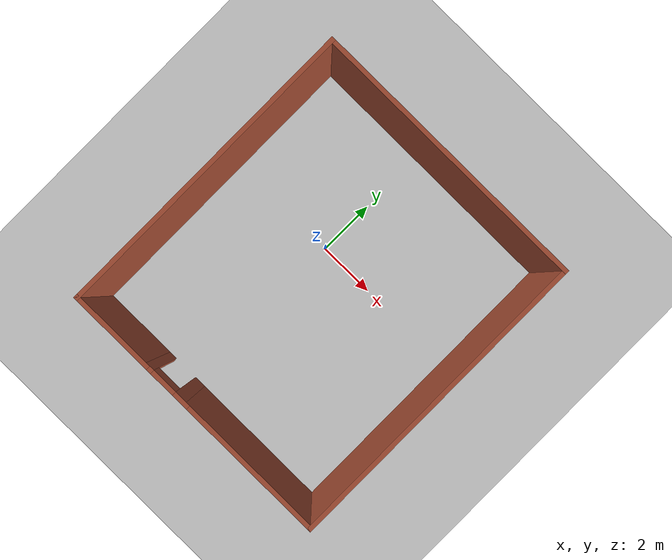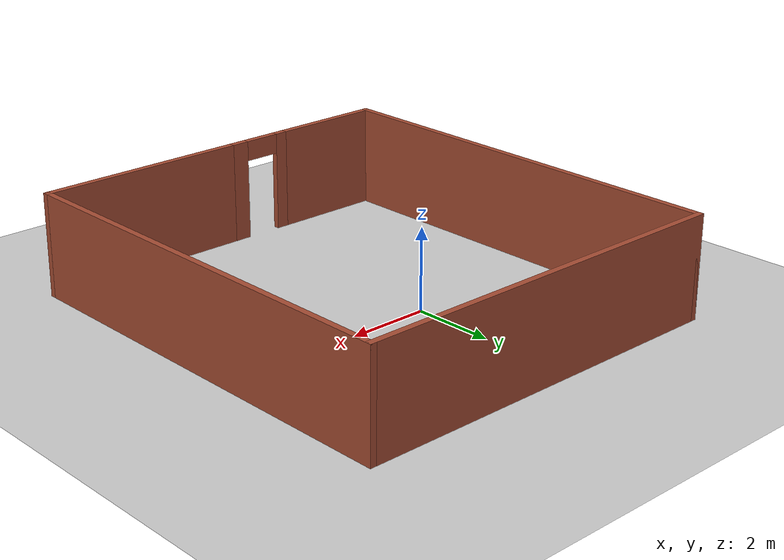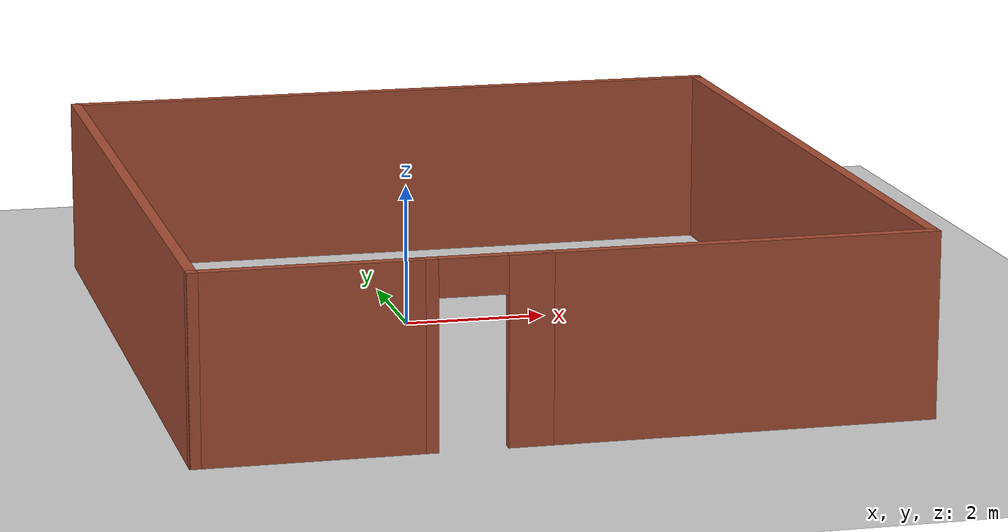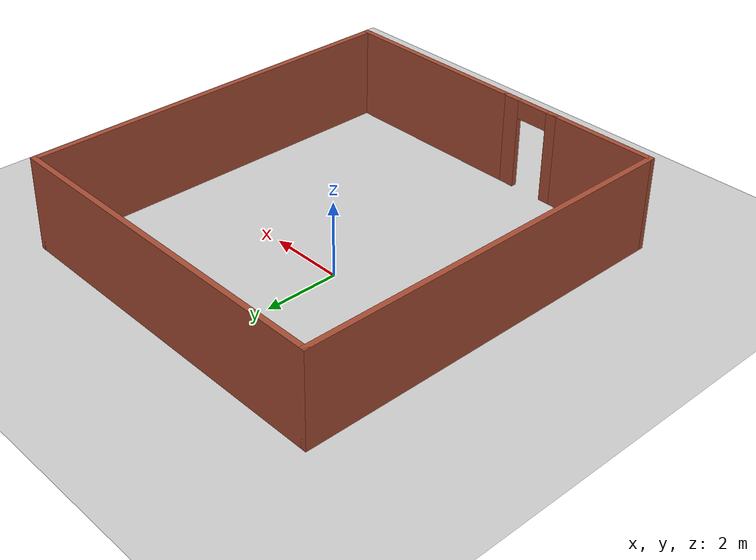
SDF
<sdf version="1.7">
 <world name="default">
  <light name="sun" type="directional">
   <pose>0 0 10 0 -0 0</pose>
   <diffuse>0.8 0.8 0.8 1</diffuse>
   <specular>0.2 0.2 0.2 1</specular>
   <attenuation>
    <range>1000</range>
    <constant>0.9</constant>
    <linear>0.01</linear>
    <quadratic>0.001</quadratic>
   </attenuation>
   <direction>-0.5 0.1 -0.9</direction>
   <spot><inner_angle>0</inner_angle><outer_angle>0</outer_angle><falloff>0</falloff></spot>
  </light>
  <model name="ground_plane">
   <static>1</static>
   <link name="link">
    <collision name="collision">
     <geometry><plane><normal>0 0 1</normal><size>100 100</size></plane></geometry>
     <surface>
      <contact><collide_bitmask>65535</collide_bitmask></contact>
      <friction><ode><mu>100</mu><mu2>50</mu2></ode></friction>
     </surface>
    </collision>
    <visual name="visual">
     <cast_shadows>0</cast_shadows>
     <geometry><plane><normal>0 0 1</normal><size>100 100</size></plane></geometry>
     <material>
      <script><uri>file://media/materials/scripts/gazebo.material</uri><name>Gazebo/Grey</name></script>
     </material>
    </visual>
   </link>
  </model>
  <gravity>0 0 -9.8</gravity>
  <magnetic_field>6e-06 2.3e-05 -4.2e-05</magnetic_field>
  <atmosphere type="adiabatic"/>
  <physics type="ode">
   <max_step_size>0.001</max_step_size>
   <real_time_factor>1</real_time_factor>
   <real_time_update_rate>1000</real_time_update_rate>
  </physics>
  <scene><ambient>0.4 0.4 0.4 1</ambient><background>0.7 0.7 0.7 1</background><shadows>1</shadows></scene>
  <audio><device>default</device></audio>
  <spherical_coordinates>
   <surface_model>EARTH_WGS84</surface_model>
   <latitude_deg>0</latitude_deg>
   <longitude_deg>0</longitude_deg>
   <elevation>0</elevation>
   <heading_deg>0</heading_deg>
  </spherical_coordinates>
  <model name="test_model">
   <pose>0.740837 -0.942222 0 0 -0 0</pose>
   <link name="Wall_2">
    <collision name="Wall_2_Collision">
     <geometry><box><size>3 0.15 2.5</size></box></geometry>
     <pose>0 0 1.25 0 -0 0</pose>
    </collision>
    <visual name="Wall_2_Visual">
     <pose>0 0 1.25 0 -0 0</pose>
     <geometry><box><size>3 0.15 2.5</size></box></geometry>
     <material>
      <script><uri>file://media/materials/scripts/gazebo.material</uri><name>Gazebo/Bricks</name></script>
      <ambient>1 1 1 1</ambient>
     </material>
     <meta><layer>0</layer></meta>
    </visual>
    <pose>-3.375 -5.3 0 0 -0 3.14159</pose>
   </link>
   <link name="Wall_3">
    <collision name="Wall_3_Collision">
     <geometry><box><size>10.75 0.15 2.5</size></box></geometry>
     <pose>0 0 1.25 0 -0 0</pose>
    </collision>
    <visual name="Wall_3_Visual">
     <pose>0 0 1.25 0 -0 0</pose>
     <geometry><box><size>10.75 0.15 2.5</size></box></geometry>
     <material>
      <script><uri>file://media/materials/scripts/gazebo.material</uri><name>Gazebo/Bricks</name></script>
      <ambient>1 1 1 1</ambient>
     </material>
     <meta><layer>0</layer></meta>
    </visual>
    <pose>-4.8 -0 0 0 -0 1.5708</pose>
   </link>
   <link name="Wall_4">
    <collision name="Wall_4_Collision">
     <geometry><box><size>9.75 0.15 2.5</size></box></geometry>
     <pose>0 0 1.25 0 -0 0</pose>
    </collision>
    <visual name="Wall_4_Visual">
     <pose>0 0 1.25 0 -0 0</pose>
     <geometry><box><size>9.75 0.15 2.5</size></box></geometry>
     <material>
      <script><uri>file://media/materials/scripts/gazebo.material</uri><name>Gazebo/Bricks</name></script>
      <ambient>1 1 1 1</ambient>
     </material>
     <meta><layer>0</layer></meta>
    </visual>
    <pose>0 5.3 0 0 -0 0</pose>
   </link>
   <link name="Wall_5">
    <collision name="Wall_5_Collision">
     <geometry><box><size>10.75 0.15 2.5</size></box></geometry>
     <pose>0 0 1.25 0 -0 0</pose>
    </collision>
    <visual name="Wall_5_Visual">
     <pose>0 0 1.25 0 -0 0</pose>
     <geometry><box><size>10.75 0.15 2.5</size></box></geometry>
     <material>
      <script><uri>file://media/materials/scripts/gazebo.material</uri><name>Gazebo/Bricks</name></script>
      <ambient>1 1 1 1</ambient>
     </material>
     <meta><layer>0</layer></meta>
    </visual>
    <pose>4.8 -0 0 0 -0 -1.5708</pose>
   </link>
   <link name="Wall_6">
    <collision name="Wall_6_Collision">
     <geometry><box><size>5.25 0.15 2.5</size></box></geometry>
     <pose>0 0 1.25 0 -0 0</pose>
    </collision>
    <visual name="Wall_6_Visual">
     <pose>0 0 1.25 0 -0 0</pose>
     <geometry><box><size>5.25 0.15 2.5</size></box></geometry>
     <material>
      <script><uri>file://media/materials/scripts/gazebo.material</uri><name>Gazebo/Bricks</name></script>
      <ambient>1 1 1 1</ambient>
     </material>
     <meta><layer>0</layer></meta>
    </visual>
    <pose>2.25 -5.3 0 0 -0 3.14159</pose>
   </link>
   <link name="Wall_8">
    <pose>-1.125 -5.3 0 0 -0 0</pose>
    <visual name="Wall_8_Visual_0">
     <pose>-0.743031 0 1.25 0 -0 0</pose>
     <geometry><box><size>0.313938 0.15 2.5</size></box></geometry>
     <material>
      <script><uri>file://media/materials/scripts/gazebo.material</uri><name>Gazebo/Bricks</name></script>
      <ambient>1 1 1 1</ambient>
     </material>
     <meta><layer>0</layer></meta>
    </visual>
    <collision name="Wall_8_Collision_0">
     <geometry><box><size>0.313938 0.15 2.5</size></box></geometry>
     <pose>-0.743031 0 1.25 0 -0 0</pose>
    </collision>
    <visual name="Wall_8_Visual_1">
     <pose>0.606969 0 1.25 0 -0 0</pose>
     <geometry><box><size>0.586062 0.15 2.5</size></box></geometry>
     <material>
      <script><uri>file://media/materials/scripts/gazebo.material</uri><name>Gazebo/Bricks</name></script>
      <ambient>1 1 1 1</ambient>
     </material>
     <meta><layer>0</layer></meta>
    </visual>
    <collision name="Wall_8_Collision_1">
     <geometry><box><size>0.586062 0.15 2.5</size></box></geometry>
     <pose>0.606969 0 1.25 0 -0 0</pose>
    </collision>
    <visual name="Wall_8_Visual_2">
     <pose>-0.136062 0 2.25 0 -0 0</pose>
     <geometry><box><size>0.9 0.15 0.5</size></box></geometry>
     <material>
      <script><uri>file://media/materials/scripts/gazebo.material</uri><name>Gazebo/Bricks</name></script>
      <ambient>1 1 1 1</ambient>
     </material>
     <meta><layer>0</layer></meta>
    </visual>
    <collision name="Wall_8_Collision_2">
     <geometry><box><size>0.9 0.15 0.5</size></box></geometry>
     <pose>-0.136062 0 2.25 0 -0 0</pose>
    </collision>
   </link>
   <static>1</static>
  </model>
 </world>
</sdf>
